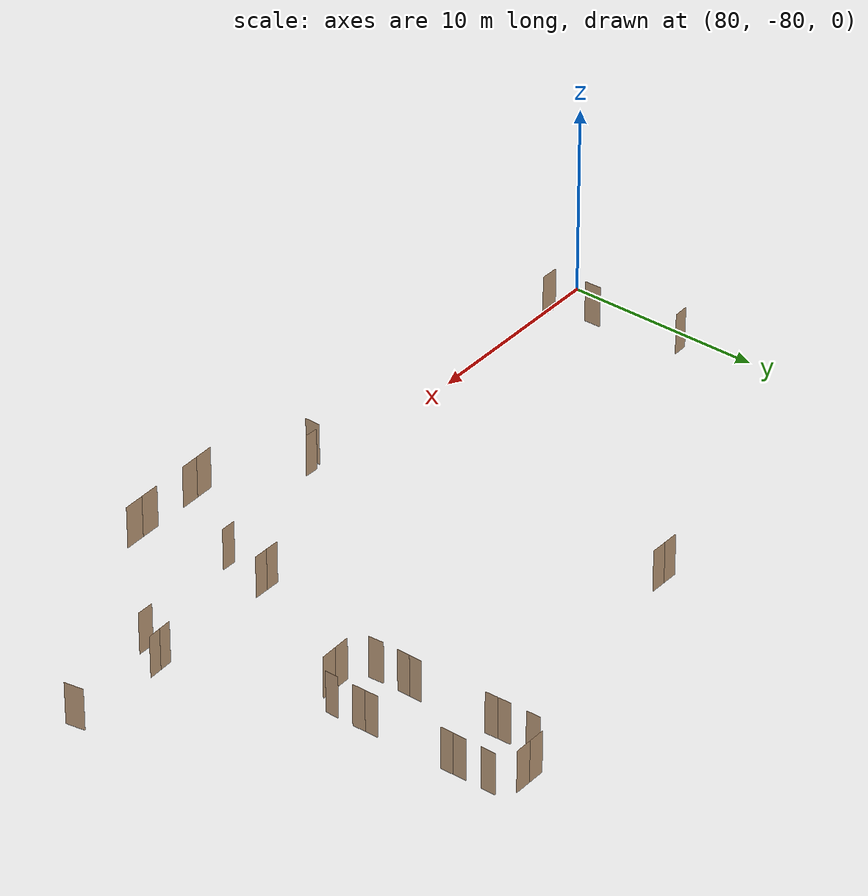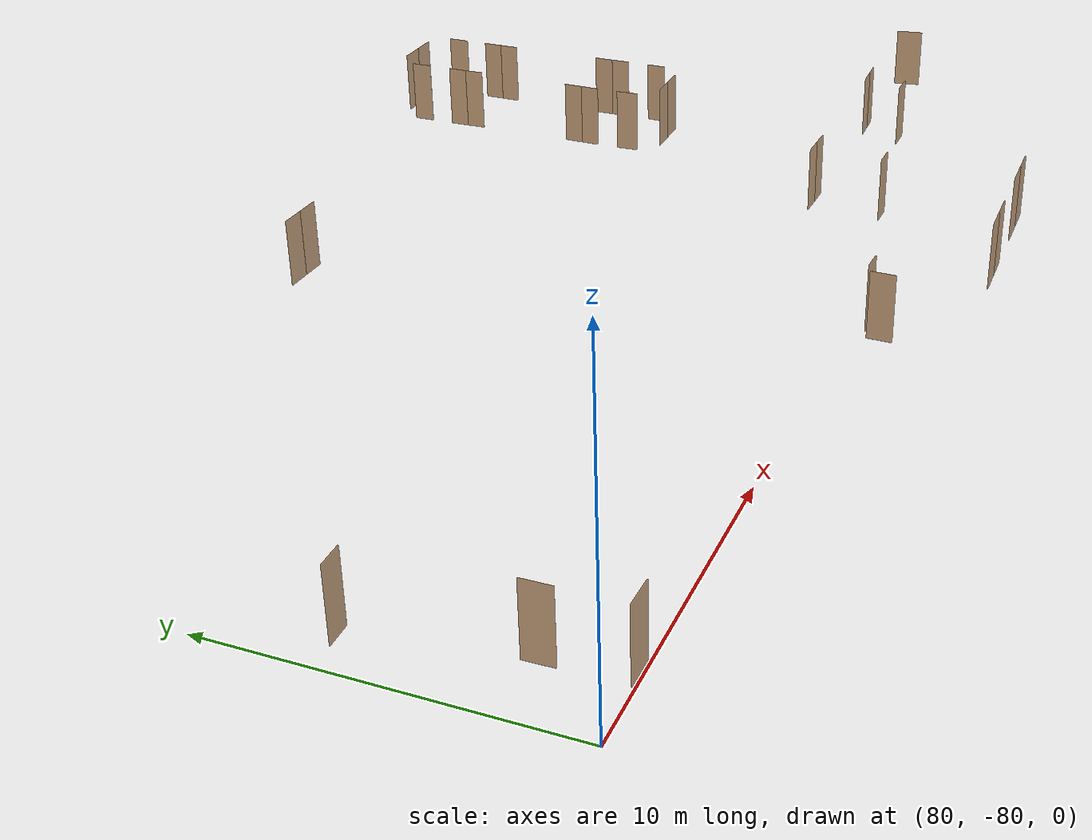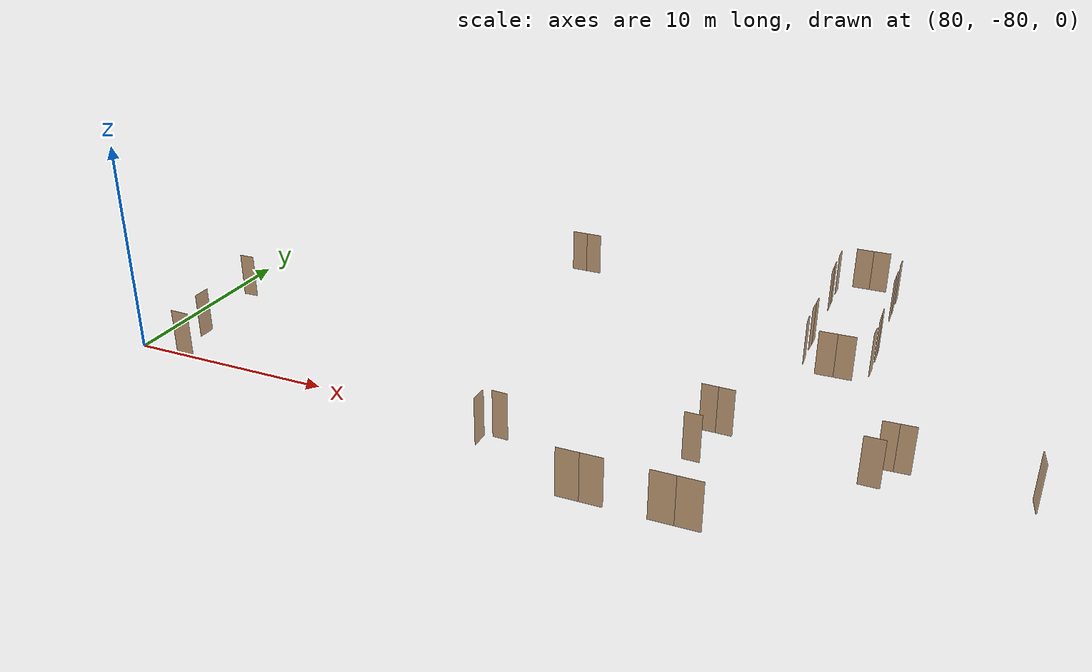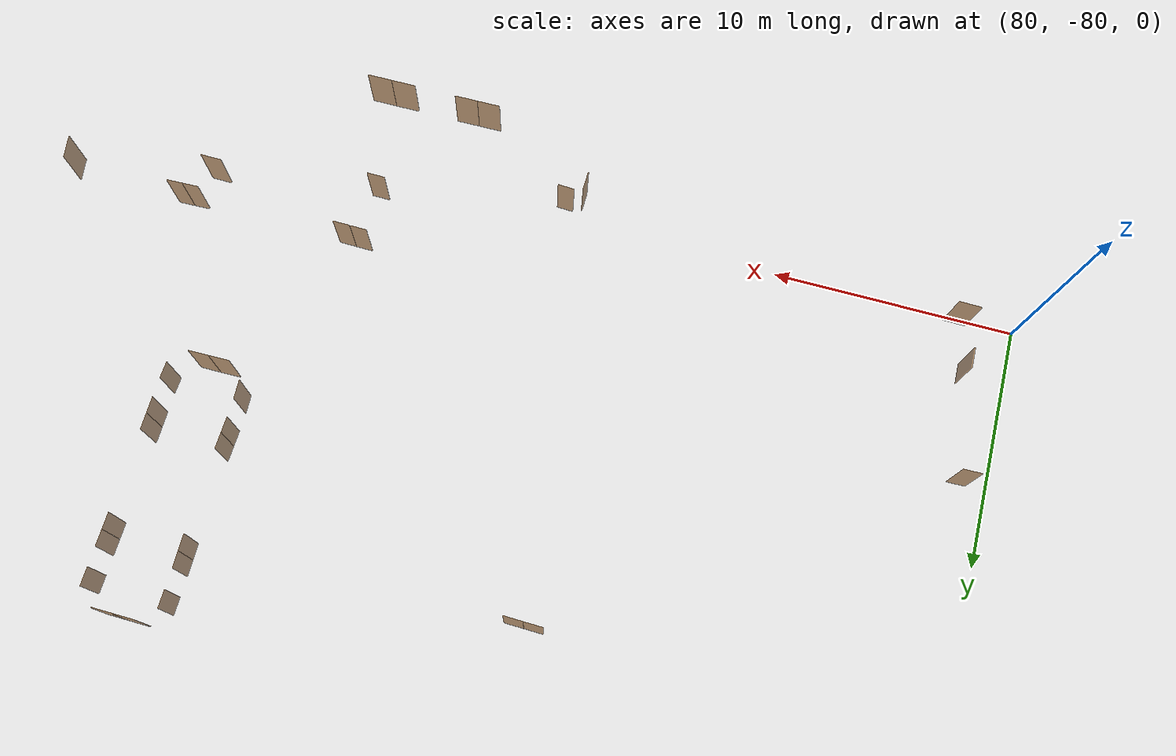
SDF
<sdf version="1.7">
 <world name="sim_world">
  <model name="door_16">
   <pose>82.3641444509181 -79.90362082905617 0.0 0 0 3.125477321741689</pose>
   <link name="right">
    <pose>0 0 1.11 0 0 0</pose>
    <visual name="right_visual">
     <geometry><box><size>0.9320701824224734 0.03 2.2</size></box></geometry>
     <material>
      <ambient>0.5 0.25 0 0.6</ambient>
      <diffuse>0.5 0.25 0 0.6</diffuse>
      <pbr><metal><metalness>0.0</metalness></metal></pbr>
     </material>
    </visual>
    <collision name="right_collision">
     <geometry><box><size>0.9320701824224734 0.03 2.2</size></box></geometry>
     <surface><contact><collide_bitmask>0x02</collide_bitmask></contact></surface>
    </collision>
    <inertial>
     <mass>50.0</mass>
     <inertia><ixx>20.17041666666667</ixx><iyy>23.786478437337767</iyy><izz>3.6235617706710954</izz></inertia>
    </inertial>
   </link>
   <joint name="right_joint" type="revolute">
    <parent>world</parent>
    <child>right</child>
    <axis><xyz>0 0 1</xyz><limit><lower>0</lower><upper>1.57</upper></limit></axis>
    <pose>0.4710350912112367 0 0 0 0 0</pose>
   </joint>
   <plugin name="register_component" filename="libregister_component.so">
    <component name="Door">
     <v_max_door>0.5</v_max_door>
     <a_max_door>0.3</a_max_door>
     <a_nom_door>0.15</a_nom_door>
     <dx_min_door>0.01</dx_min_door>
     <f_max_door>500.0</f_max_door>
     <ros_interface>true</ros_interface>
     <door name="door_16" type="SwingDoor" left_joint_name="empty_joint" right_joint_name="right_joint"/>
    </component>
   </plugin>
  </model>
  <model name="door_17">
   <pose>81.88743643286054 -77.72429220719917 0.0 0 0 1.5839888097583863</pose>
   <link name="right">
    <pose>0 0 1.11 0 0 0</pose>
    <visual name="right_visual">
     <geometry><box><size>0.8593218251926276 0.03 2.2</size></box></geometry>
     <material>
      <ambient>0.5 0.25 0 0.6</ambient>
      <diffuse>0.5 0.25 0 0.6</diffuse>
      <pbr><metal><metalness>0.0</metalness></metal></pbr>
     </material>
    </visual>
    <collision name="right_collision">
     <geometry><box><size>0.8593218251926276 0.03 2.2</size></box></geometry>
     <surface><contact><collide_bitmask>0x02</collide_bitmask></contact></surface>
    </collision>
    <inertial>
     <mass>50.0</mass>
     <inertia><ixx>20.17041666666667</ixx><iyy>23.24347499688496</iyy><izz>3.080558330218287</izz></inertia>
    </inertial>
   </link>
   <joint name="right_joint" type="revolute">
    <parent>world</parent>
    <child>right</child>
    <axis><xyz>0 0 1</xyz><limit><lower>0</lower><upper>1.57</upper></limit></axis>
    <pose>0.4346609125963138 0 0 0 0 0</pose>
   </joint>
   <plugin name="register_component" filename="libregister_component.so">
    <component name="Door">
     <v_max_door>0.5</v_max_door>
     <a_max_door>0.3</a_max_door>
     <a_nom_door>0.15</a_nom_door>
     <dx_min_door>0.01</dx_min_door>
     <f_max_door>500.0</f_max_door>
     <ros_interface>true</ros_interface>
     <door name="door_17" type="SwingDoor" left_joint_name="empty_joint" right_joint_name="right_joint"/>
    </component>
   </plugin>
  </model>
  <model name="door_19">
   <pose>81.15341298167101 -73.16172292535998 0.0 0 0 -3.1118926288095348</pose>
   <link name="right">
    <pose>0 0 1.11 0 0 0</pose>
    <visual name="right_visual">
     <geometry><box><size>0.7583476424192406 0.03 2.2</size></box></geometry>
     <material>
      <ambient>0.5 0.25 0 0.6</ambient>
      <diffuse>0.5 0.25 0 0.6</diffuse>
      <pbr><metal><metalness>0.0</metalness></metal></pbr>
     </material>
    </visual>
    <collision name="right_collision">
     <geometry><box><size>0.7583476424192406 0.03 2.2</size></box></geometry>
     <surface><contact><collide_bitmask>0x02</collide_bitmask></contact></surface>
    </collision>
    <inertial>
     <mass>50.0</mass>
     <inertia><ixx>20.17041666666667</ixx><iyy>22.562879778178424</iyy><izz>2.399963111511752</izz></inertia>
    </inertial>
   </link>
   <joint name="right_joint" type="revolute">
    <parent>world</parent>
    <child>right</child>
    <axis><xyz>0 0 -1</xyz><limit><lower>0</lower><upper>1.57</upper></limit></axis>
    <pose>0.3841738212096203 0 0 0 0 0</pose>
   </joint>
   <plugin name="register_component" filename="libregister_component.so">
    <component name="Door">
     <v_max_door>0.5</v_max_door>
     <a_max_door>0.3</a_max_door>
     <a_nom_door>0.15</a_nom_door>
     <dx_min_door>0.01</dx_min_door>
     <f_max_door>500.0</f_max_door>
     <ros_interface>true</ros_interface>
     <door name="door_19" type="SwingDoor" left_joint_name="empty_joint" right_joint_name="right_joint"/>
    </component>
   </plugin>
  </model>
  <model name="door_38">
   <pose>96.27404455471877 -63.08902218804129 0.0 0 0 3.1270987352519044</pose>
   <link name="right">
    <pose>0.3982167613476379 0 1.11 0 0 0</pose>
    <visual name="right_visual">
     <geometry><box><size>0.7864335226952758 0.03 2.2</size></box></geometry>
     <material>
      <ambient>0.5 0.25 0 0.6</ambient>
      <diffuse>0.5 0.25 0 0.6</diffuse>
      <pbr><metal><metalness>0.0</metalness></metal></pbr>
     </material>
    </visual>
    <collision name="right_collision">
     <geometry><box><size>0.7864335226952758 0.03 2.2</size></box></geometry>
     <surface><contact><collide_bitmask>0x02</collide_bitmask></contact></surface>
    </collision>
    <inertial>
     <mass>50.0</mass>
     <inertia><ixx>20.17041666666667</ixx><iyy>22.74365702341209</iyy><izz>2.5807403567454203</izz></inertia>
    </inertial>
   </link>
   <joint name="right_joint" type="revolute">
    <parent>world</parent>
    <child>right</child>
    <axis><xyz>0 0 -1</xyz><limit><lower>0</lower><upper>1.57</upper></limit></axis>
    <pose>0.3982167613476379 0 0 0 0 0</pose>
   </joint>
   <link name="left">
    <pose>-0.3982167613476379 0 1.11 0 0 0</pose>
    <visual name="left_visual">
     <geometry><box><size>0.7864335226952758 0.03 2.2</size></box></geometry>
     <material>
      <ambient>0.5 0.25 0 0.6</ambient>
      <diffuse>0.5 0.25 0 0.6</diffuse>
      <pbr><metal><metalness>0.0</metalness></metal></pbr>
     </material>
    </visual>
    <collision name="left_collision">
     <geometry><box><size>0.7864335226952758 0.03 2.2</size></box></geometry>
     <surface><contact><collide_bitmask>0x02</collide_bitmask></contact></surface>
    </collision>
    <inertial>
     <mass>50.0</mass>
     <inertia><ixx>20.17041666666667</ixx><iyy>22.74365702341209</iyy><izz>2.5807403567454203</izz></inertia>
    </inertial>
   </link>
   <joint name="left_joint" type="revolute">
    <parent>world</parent>
    <child>left</child>
    <axis><xyz>0 0 -1</xyz><limit><lower>-1.57</lower><upper>0</upper></limit></axis>
    <pose>-0.3982167613476379 0 0 0 0 0</pose>
   </joint>
   <plugin name="register_component" filename="libregister_component.so">
    <component name="Door">
     <v_max_door>0.5</v_max_door>
     <a_max_door>0.3</a_max_door>
     <a_nom_door>0.15</a_nom_door>
     <dx_min_door>0.01</dx_min_door>
     <f_max_door>500.0</f_max_door>
     <ros_interface>true</ros_interface>
     <door name="door_38" type="DoubleSwingDoor" left_joint_name="left_joint" right_joint_name="right_joint"/>
    </component>
   </plugin>
  </model>
  <model name="door_39">
   <pose>107.06542294006414 -78.98809769811687 0.0 0 0 3.127732387679323</pose>
   <link name="right">
    <pose>0 0 1.11 0 0 0</pose>
    <visual name="right_visual">
     <geometry><box><size>0.7547885169420366 0.03 2.2</size></box></geometry>
     <material>
      <ambient>0.5 0.25 0 0.6</ambient>
      <diffuse>0.5 0.25 0 0.6</diffuse>
      <pbr><metal><metalness>0.0</metalness></metal></pbr>
     </material>
    </visual>
    <collision name="right_collision">
     <geometry><box><size>0.7547885169420366 0.03 2.2</size></box></geometry>
     <surface><contact><collide_bitmask>0x02</collide_bitmask></contact></surface>
    </collision>
    <inertial>
     <mass>50.0</mass>
     <inertia><ixx>20.17041666666667</ixx><iyy>22.5404404387815</iyy><izz>2.37752377211483</izz></inertia>
    </inertial>
   </link>
   <joint name="right_joint" type="revolute">
    <parent>world</parent>
    <child>right</child>
    <axis><xyz>0 0 1</xyz><limit><lower>0</lower><upper>1.57</upper></limit></axis>
    <pose>0.3823942584710183 0 0 0 0 0</pose>
   </joint>
   <plugin name="register_component" filename="libregister_component.so">
    <component name="Door">
     <v_max_door>0.5</v_max_door>
     <a_max_door>0.3</a_max_door>
     <a_nom_door>0.15</a_nom_door>
     <dx_min_door>0.01</dx_min_door>
     <f_max_door>500.0</f_max_door>
     <ros_interface>true</ros_interface>
     <door name="door_39" type="SwingDoor" left_joint_name="empty_joint" right_joint_name="right_joint"/>
    </component>
   </plugin>
  </model>
  <model name="door_40">
   <pose>103.9711401048485 -83.41017428056057 0.0 0 0 -3.12980783928951</pose>
   <link name="right">
    <pose>0.49038860687994895 0 1.11 0 0 0</pose>
    <visual name="right_visual">
     <geometry><box><size>0.9707772137598979 0.03 2.2</size></box></geometry>
     <material>
      <ambient>0.5 0.25 0 0.6</ambient>
      <diffuse>0.5 0.25 0 0.6</diffuse>
      <pbr><metal><metalness>0.0</metalness></metal></pbr>
     </material>
    </visual>
    <collision name="right_collision">
     <geometry><box><size>0.9707772137598979 0.03 2.2</size></box></geometry>
     <surface><contact><collide_bitmask>0x02</collide_bitmask></contact></surface>
    </collision>
    <inertial>
     <mass>50.0</mass>
     <inertia><ixx>20.17041666666667</ixx><iyy>24.093368328147633</iyy><izz>3.930451661480961</izz></inertia>
    </inertial>
   </link>
   <joint name="right_joint" type="revolute">
    <parent>world</parent>
    <child>right</child>
    <axis><xyz>0 0 -1</xyz><limit><lower>0</lower><upper>1.57</upper></limit></axis>
    <pose>0.49038860687994895 0 0 0 0 0</pose>
   </joint>
   <link name="left">
    <pose>-0.49038860687994895 0 1.11 0 0 0</pose>
    <visual name="left_visual">
     <geometry><box><size>0.9707772137598979 0.03 2.2</size></box></geometry>
     <material>
      <ambient>0.5 0.25 0 0.6</ambient>
      <diffuse>0.5 0.25 0 0.6</diffuse>
      <pbr><metal><metalness>0.0</metalness></metal></pbr>
     </material>
    </visual>
    <collision name="left_collision">
     <geometry><box><size>0.9707772137598979 0.03 2.2</size></box></geometry>
     <surface><contact><collide_bitmask>0x02</collide_bitmask></contact></surface>
    </collision>
    <inertial>
     <mass>50.0</mass>
     <inertia><ixx>20.17041666666667</ixx><iyy>24.093368328147633</iyy><izz>3.930451661480961</izz></inertia>
    </inertial>
   </link>
   <joint name="left_joint" type="revolute">
    <parent>world</parent>
    <child>left</child>
    <axis><xyz>0 0 -1</xyz><limit><lower>-1.57</lower><upper>0</upper></limit></axis>
    <pose>-0.49038860687994895 0 0 0 0 0</pose>
   </joint>
   <plugin name="register_component" filename="libregister_component.so">
    <component name="Door">
     <v_max_door>0.5</v_max_door>
     <a_max_door>0.3</a_max_door>
     <a_nom_door>0.15</a_nom_door>
     <dx_min_door>0.01</dx_min_door>
     <f_max_door>500.0</f_max_door>
     <ros_interface>true</ros_interface>
     <door name="door_40" type="DoubleSwingDoor" left_joint_name="left_joint" right_joint_name="right_joint"/>
    </component>
   </plugin>
  </model>
  <model name="door_41">
   <pose>107.75975690424413 -83.3907562252413 0.0 0 0 -3.1340848576950155</pose>
   <link name="right">
    <pose>0.5234638417380552 0 1.11 0 0 0</pose>
    <visual name="right_visual">
     <geometry><box><size>1.0369276834761103 0.03 2.2</size></box></geometry>
     <material>
      <ambient>0.5 0.25 0 0.6</ambient>
      <diffuse>0.5 0.25 0 0.6</diffuse>
      <pbr><metal><metalness>0.0</metalness></metal></pbr>
     </material>
    </visual>
    <collision name="right_collision">
     <geometry><box><size>1.0369276834761103 0.03 2.2</size></box></geometry>
     <surface><contact><collide_bitmask>0x02</collide_bitmask></contact></surface>
    </collision>
    <inertial>
     <mass>50.0</mass>
     <inertia><ixx>20.17041666666667</ixx><iyy>24.646745919829726</iyy><izz>4.4838292531630515</izz></inertia>
    </inertial>
   </link>
   <joint name="right_joint" type="revolute">
    <parent>world</parent>
    <child>right</child>
    <axis><xyz>0 0 -1</xyz><limit><lower>0</lower><upper>1.57</upper></limit></axis>
    <pose>0.5234638417380552 0 0 0 0 0</pose>
   </joint>
   <link name="left">
    <pose>-0.5234638417380552 0 1.11 0 0 0</pose>
    <visual name="left_visual">
     <geometry><box><size>1.0369276834761103 0.03 2.2</size></box></geometry>
     <material>
      <ambient>0.5 0.25 0 0.6</ambient>
      <diffuse>0.5 0.25 0 0.6</diffuse>
      <pbr><metal><metalness>0.0</metalness></metal></pbr>
     </material>
    </visual>
    <collision name="left_collision">
     <geometry><box><size>1.0369276834761103 0.03 2.2</size></box></geometry>
     <surface><contact><collide_bitmask>0x02</collide_bitmask></contact></surface>
    </collision>
    <inertial>
     <mass>50.0</mass>
     <inertia><ixx>20.17041666666667</ixx><iyy>24.646745919829726</iyy><izz>4.4838292531630515</izz></inertia>
    </inertial>
   </link>
   <joint name="left_joint" type="revolute">
    <parent>world</parent>
    <child>left</child>
    <axis><xyz>0 0 -1</xyz><limit><lower>-1.57</lower><upper>0</upper></limit></axis>
    <pose>-0.5234638417380552 0 0 0 0 0</pose>
   </joint>
   <plugin name="register_component" filename="libregister_component.so">
    <component name="Door">
     <v_max_door>0.5</v_max_door>
     <a_max_door>0.3</a_max_door>
     <a_nom_door>0.15</a_nom_door>
     <dx_min_door>0.01</dx_min_door>
     <f_max_door>500.0</f_max_door>
     <ros_interface>true</ros_interface>
     <door name="door_41" type="DoubleSwingDoor" left_joint_name="left_joint" right_joint_name="right_joint"/>
    </component>
   </plugin>
  </model>
  <model name="door_42">
   <pose>98.60858287549235 -81.07030610034701 0.0 0 0 1.5503641261719026</pose>
   <link name="right">
    <pose>0 0 1.11 0 0 0</pose>
    <visual name="right_visual">
     <geometry><box><size>0.7858123181095408 0.03 2.2</size></box></geometry>
     <material>
      <ambient>0.5 0.25 0 0.6</ambient>
      <diffuse>0.5 0.25 0 0.6</diffuse>
      <pbr><metal><metalness>0.0</metalness></metal></pbr>
     </material>
    </visual>
    <collision name="right_collision">
     <geometry><box><size>0.7858123181095408 0.03 2.2</size></box></geometry>
     <surface><contact><collide_bitmask>0x02</collide_bitmask></contact></surface>
    </collision>
    <inertial>
     <mass>50.0</mass>
     <inertia><ixx>20.17041666666667</ixx><iyy>22.73958749705288</iyy><izz>2.576670830386209</izz></inertia>
    </inertial>
   </link>
   <joint name="right_joint" type="revolute">
    <parent>world</parent>
    <child>right</child>
    <axis><xyz>0 0 -1</xyz><limit><lower>0</lower><upper>1.57</upper></limit></axis>
    <pose>0.3979061590547704 0 0 0 0 0</pose>
   </joint>
   <plugin name="register_component" filename="libregister_component.so">
    <component name="Door">
     <v_max_door>0.5</v_max_door>
     <a_max_door>0.3</a_max_door>
     <a_nom_door>0.15</a_nom_door>
     <dx_min_door>0.01</dx_min_door>
     <f_max_door>500.0</f_max_door>
     <ros_interface>true</ros_interface>
     <door name="door_42" type="SwingDoor" left_joint_name="empty_joint" right_joint_name="right_joint"/>
    </component>
   </plugin>
  </model>
  <model name="door_43">
   <pose>99.31956516466465 -80.57054194875693 0.0 0 0 3.0962807603301337</pose>
   <link name="right">
    <pose>0 0 1.11 0 0 0</pose>
    <visual name="right_visual">
     <geometry><box><size>0.6979810594334084 0.03 2.2</size></box></geometry>
     <material>
      <ambient>0.5 0.25 0 0.6</ambient>
      <diffuse>0.5 0.25 0 0.6</diffuse>
      <pbr><metal><metalness>0.0</metalness></metal></pbr>
     </material>
    </visual>
    <collision name="right_collision">
     <geometry><box><size>0.6979810594334084 0.03 2.2</size></box></geometry>
     <surface><contact><collide_bitmask>0x02</collide_bitmask></contact></surface>
    </collision>
    <inertial>
     <mass>50.0</mass>
     <inertia><ixx>20.17041666666667</ixx><iyy>22.196573163865768</iyy><izz>2.0336564971990967</izz></inertia>
    </inertial>
   </link>
   <joint name="right_joint" type="revolute">
    <parent>world</parent>
    <child>right</child>
    <axis><xyz>0 0 1</xyz><limit><lower>0</lower><upper>1.57</upper></limit></axis>
    <pose>0.3539905297167042 0 0 0 0 0</pose>
   </joint>
   <plugin name="register_component" filename="libregister_component.so">
    <component name="Door">
     <v_max_door>0.5</v_max_door>
     <a_max_door>0.3</a_max_door>
     <a_nom_door>0.15</a_nom_door>
     <dx_min_door>0.01</dx_min_door>
     <f_max_door>500.0</f_max_door>
     <ros_interface>true</ros_interface>
     <door name="door_43" type="SwingDoor" left_joint_name="empty_joint" right_joint_name="right_joint"/>
    </component>
   </plugin>
  </model>
  <model name="door_44">
   <pose>113.92414357749678 -77.93857950541397 0.0 0 0 3.1343926968784634</pose>
   <link name="right">
    <pose>0 0 1.11 0 0 0</pose>
    <visual name="right_visual">
     <geometry><box><size>0.8758276333837675 0.03 2.2</size></box></geometry>
     <material>
      <ambient>0.5 0.25 0 0.6</ambient>
      <diffuse>0.5 0.25 0 0.6</diffuse>
      <pbr><metal><metalness>0.0</metalness></metal></pbr>
     </material>
    </visual>
    <collision name="right_collision">
     <geometry><box><size>0.8758276333837675 0.03 2.2</size></box></geometry>
     <surface><contact><collide_bitmask>0x02</collide_bitmask></contact></surface>
    </collision>
    <inertial>
     <mass>50.0</mass>
     <inertia><ixx>20.17041666666667</ixx><iyy>23.362808514160882</iyy><izz>3.1998918474942126</izz></inertia>
    </inertial>
   </link>
   <joint name="right_joint" type="revolute">
    <parent>world</parent>
    <child>right</child>
    <axis><xyz>0 0 1</xyz><limit><lower>0</lower><upper>1.57</upper></limit></axis>
    <pose>0.44291381669188373 0 0 0 0 0</pose>
   </joint>
   <plugin name="register_component" filename="libregister_component.so">
    <component name="Door">
     <v_max_door>0.5</v_max_door>
     <a_max_door>0.3</a_max_door>
     <a_nom_door>0.15</a_nom_door>
     <dx_min_door>0.01</dx_min_door>
     <f_max_door>500.0</f_max_door>
     <ros_interface>true</ros_interface>
     <door name="door_44" type="SwingDoor" left_joint_name="empty_joint" right_joint_name="right_joint"/>
    </component>
   </plugin>
  </model>
  <model name="door_45">
   <pose>119.9033625497559 -76.80719706715539 0.0 0 0 1.716756556583391</pose>
   <link name="right">
    <pose>0 0 1.11 0 0 0</pose>
    <visual name="right_visual">
     <geometry><box><size>0.961319955664201 0.03 2.2</size></box></geometry>
     <material>
      <ambient>0.5 0.25 0 0.6</ambient>
      <diffuse>0.5 0.25 0 0.6</diffuse>
      <pbr><metal><metalness>0.0</metalness></metal></pbr>
     </material>
    </visual>
    <collision name="right_collision">
     <geometry><box><size>0.961319955664201 0.03 2.2</size></box></geometry>
     <surface><contact><collide_bitmask>0x02</collide_bitmask></contact></surface>
    </collision>
    <inertial>
     <mass>50.0</mass>
     <inertia><ixx>20.17041666666667</ixx><iyy>24.017233571492593</iyy><izz>3.854316904825923</izz></inertia>
    </inertial>
   </link>
   <joint name="right_joint" type="revolute">
    <parent>world</parent>
    <child>right</child>
    <axis><xyz>0 0 -1</xyz><limit><lower>0</lower><upper>1.57</upper></limit></axis>
    <pose>0.4856599778321005 0 0 0 0 0</pose>
   </joint>
   <plugin name="register_component" filename="libregister_component.so">
    <component name="Door">
     <v_max_door>0.5</v_max_door>
     <a_max_door>0.3</a_max_door>
     <a_nom_door>0.15</a_nom_door>
     <dx_min_door>0.01</dx_min_door>
     <f_max_door>500.0</f_max_door>
     <ros_interface>true</ros_interface>
     <door name="door_45" type="SwingDoor" left_joint_name="empty_joint" right_joint_name="right_joint"/>
    </component>
   </plugin>
  </model>
  <model name="door_46">
   <pose>114.65890063293509 -76.50570069242961 0.0 0 0 -3.1060419598570164</pose>
   <link name="right">
    <pose>0.34203078072737075 0 1.11 0 0 0</pose>
    <visual name="right_visual">
     <geometry><box><size>0.6740615614547415 0.03 2.2</size></box></geometry>
     <material>
      <ambient>0.5 0.25 0 0.6</ambient>
      <diffuse>0.5 0.25 0 0.6</diffuse>
      <pbr><metal><metalness>0.0</metalness></metal></pbr>
     </material>
    </visual>
    <collision name="right_collision">
     <geometry><box><size>0.6740615614547415 0.03 2.2</size></box></geometry>
     <surface><contact><collide_bitmask>0x02</collide_bitmask></contact></surface>
    </collision>
    <inertial>
     <mass>50.0</mass>
     <inertia><ixx>20.17041666666667</ixx><iyy>22.05982911929502</iyy><izz>1.8969124526283512</izz></inertia>
    </inertial>
   </link>
   <joint name="right_joint" type="revolute">
    <parent>world</parent>
    <child>right</child>
    <axis><xyz>0 0 1</xyz><limit><lower>0</lower><upper>1.57</upper></limit></axis>
    <pose>0.34203078072737075 0 0 0 0 0</pose>
   </joint>
   <link name="left">
    <pose>-0.34203078072737075 0 1.11 0 0 0</pose>
    <visual name="left_visual">
     <geometry><box><size>0.6740615614547415 0.03 2.2</size></box></geometry>
     <material>
      <ambient>0.5 0.25 0 0.6</ambient>
      <diffuse>0.5 0.25 0 0.6</diffuse>
      <pbr><metal><metalness>0.0</metalness></metal></pbr>
     </material>
    </visual>
    <collision name="left_collision">
     <geometry><box><size>0.6740615614547415 0.03 2.2</size></box></geometry>
     <surface><contact><collide_bitmask>0x02</collide_bitmask></contact></surface>
    </collision>
    <inertial>
     <mass>50.0</mass>
     <inertia><ixx>20.17041666666667</ixx><iyy>22.05982911929502</iyy><izz>1.8969124526283512</izz></inertia>
    </inertial>
   </link>
   <joint name="left_joint" type="revolute">
    <parent>world</parent>
    <child>left</child>
    <axis><xyz>0 0 1</xyz><limit><lower>-1.57</lower><upper>0</upper></limit></axis>
    <pose>-0.34203078072737075 0 0 0 0 0</pose>
   </joint>
   <plugin name="register_component" filename="libregister_component.so">
    <component name="Door">
     <v_max_door>0.5</v_max_door>
     <a_max_door>0.3</a_max_door>
     <a_nom_door>0.15</a_nom_door>
     <dx_min_door>0.01</dx_min_door>
     <f_max_door>500.0</f_max_door>
     <ros_interface>true</ros_interface>
     <door name="door_46" type="DoubleSwingDoor" left_joint_name="left_joint" right_joint_name="right_joint"/>
    </component>
   </plugin>
  </model>
  <model name="door_47">
   <pose>107.40214729024574 -76.54094363940075 0.0 0 0 3.1283432019202078</pose>
   <link name="right">
    <pose>0.3627317671407243 0 1.11 0 0 0</pose>
    <visual name="right_visual">
     <geometry><box><size>0.7154635342814486 0.03 2.2</size></box></geometry>
     <material>
      <ambient>0.5 0.25 0 0.6</ambient>
      <diffuse>0.5 0.25 0 0.6</diffuse>
      <pbr><metal><metalness>0.0</metalness></metal></pbr>
     </material>
    </visual>
    <collision name="right_collision">
     <geometry><box><size>0.7154635342814486 0.03 2.2</size></box></geometry>
     <surface><contact><collide_bitmask>0x02</collide_bitmask></contact></surface>
    </collision>
    <inertial>
     <mass>50.0</mass>
     <inertia><ixx>20.17041666666667</ixx><iyy>22.299533620360428</iyy><izz>2.136616953693757</izz></inertia>
    </inertial>
   </link>
   <joint name="right_joint" type="revolute">
    <parent>world</parent>
    <child>right</child>
    <axis><xyz>0 0 1</xyz><limit><lower>0</lower><upper>1.57</upper></limit></axis>
    <pose>0.3627317671407243 0 0 0 0 0</pose>
   </joint>
   <link name="left">
    <pose>-0.3627317671407243 0 1.11 0 0 0</pose>
    <visual name="left_visual">
     <geometry><box><size>0.7154635342814486 0.03 2.2</size></box></geometry>
     <material>
      <ambient>0.5 0.25 0 0.6</ambient>
      <diffuse>0.5 0.25 0 0.6</diffuse>
      <pbr><metal><metalness>0.0</metalness></metal></pbr>
     </material>
    </visual>
    <collision name="left_collision">
     <geometry><box><size>0.7154635342814486 0.03 2.2</size></box></geometry>
     <surface><contact><collide_bitmask>0x02</collide_bitmask></contact></surface>
    </collision>
    <inertial>
     <mass>50.0</mass>
     <inertia><ixx>20.17041666666667</ixx><iyy>22.299533620360428</iyy><izz>2.136616953693757</izz></inertia>
    </inertial>
   </link>
   <joint name="left_joint" type="revolute">
    <parent>world</parent>
    <child>left</child>
    <axis><xyz>0 0 1</xyz><limit><lower>-1.57</lower><upper>0</upper></limit></axis>
    <pose>-0.3627317671407243 0 0 0 0 0</pose>
   </joint>
   <plugin name="register_component" filename="libregister_component.so">
    <component name="Door">
     <v_max_door>0.5</v_max_door>
     <a_max_door>0.3</a_max_door>
     <a_nom_door>0.15</a_nom_door>
     <dx_min_door>0.01</dx_min_door>
     <f_max_door>500.0</f_max_door>
     <ros_interface>true</ros_interface>
     <door name="door_47" type="DoubleSwingDoor" left_joint_name="left_joint" right_joint_name="right_joint"/>
    </component>
   </plugin>
  </model>
  <model name="door_48">
   <pose>111.04104893683285 -69.7426330661263 0.0 0 0 -3.1234603377160393</pose>
   <link name="right">
    <pose>0.4240106138316132 0 1.11 0 0 0</pose>
    <visual name="right_visual">
     <geometry><box><size>0.8380212276632264 0.03 2.2</size></box></geometry>
     <material>
      <ambient>0.5 0.25 0 0.6</ambient>
      <diffuse>0.5 0.25 0 0.6</diffuse>
      <pbr><metal><metalness>0.0</metalness></metal></pbr>
     </material>
    </visual>
    <collision name="right_collision">
     <geometry><box><size>0.8380212276632264 0.03 2.2</size></box></geometry>
     <surface><contact><collide_bitmask>0x02</collide_bitmask></contact></surface>
    </collision>
    <inertial>
     <mass>50.0</mass>
     <inertia><ixx>20.17041666666667</ixx><iyy>23.092831575059094</iyy><izz>2.929914908392422</izz></inertia>
    </inertial>
   </link>
   <joint name="right_joint" type="revolute">
    <parent>world</parent>
    <child>right</child>
    <axis><xyz>0 0 1</xyz><limit><lower>0</lower><upper>1.57</upper></limit></axis>
    <pose>0.4240106138316132 0 0 0 0 0</pose>
   </joint>
   <link name="left">
    <pose>-0.4240106138316132 0 1.11 0 0 0</pose>
    <visual name="left_visual">
     <geometry><box><size>0.8380212276632264 0.03 2.2</size></box></geometry>
     <material>
      <ambient>0.5 0.25 0 0.6</ambient>
      <diffuse>0.5 0.25 0 0.6</diffuse>
      <pbr><metal><metalness>0.0</metalness></metal></pbr>
     </material>
    </visual>
    <collision name="left_collision">
     <geometry><box><size>0.8380212276632264 0.03 2.2</size></box></geometry>
     <surface><contact><collide_bitmask>0x02</collide_bitmask></contact></surface>
    </collision>
    <inertial>
     <mass>50.0</mass>
     <inertia><ixx>20.17041666666667</ixx><iyy>23.092831575059094</iyy><izz>2.929914908392422</izz></inertia>
    </inertial>
   </link>
   <joint name="left_joint" type="revolute">
    <parent>world</parent>
    <child>left</child>
    <axis><xyz>0 0 1</xyz><limit><lower>-1.57</lower><upper>0</upper></limit></axis>
    <pose>-0.4240106138316132 0 0 0 0 0</pose>
   </joint>
   <plugin name="register_component" filename="libregister_component.so">
    <component name="Door">
     <v_max_door>0.5</v_max_door>
     <a_max_door>0.3</a_max_door>
     <a_nom_door>0.15</a_nom_door>
     <dx_min_door>0.01</dx_min_door>
     <f_max_door>500.0</f_max_door>
     <ros_interface>true</ros_interface>
     <door name="door_48" type="DoubleSwingDoor" left_joint_name="left_joint" right_joint_name="right_joint"/>
    </component>
   </plugin>
  </model>
  <model name="door_49">
   <pose>112.55513324870054 -68.71594643422671 0.0 0 0 1.5301008629182398</pose>
   <link name="right">
    <pose>0 0 1.11 0 0 0</pose>
    <visual name="right_visual">
     <geometry><box><size>0.6862428806285946 0.03 2.2</size></box></geometry>
     <material>
      <ambient>0.5 0.25 0 0.6</ambient>
      <diffuse>0.5 0.25 0 0.6</diffuse>
      <pbr><metal><metalness>0.0</metalness></metal></pbr>
     </material>
    </visual>
    <collision name="right_collision">
     <geometry><box><size>0.6862428806285946 0.03 2.2</size></box></geometry>
     <surface><contact><collide_bitmask>0x02</collide_bitmask></contact></surface>
    </collision>
    <inertial>
     <mass>50.0</mass>
     <inertia><ixx>20.17041666666667</ixx><iyy>22.128872046722638</iyy><izz>1.965955380055965</izz></inertia>
    </inertial>
   </link>
   <joint name="right_joint" type="revolute">
    <parent>world</parent>
    <child>right</child>
    <axis><xyz>0 0 -1</xyz><limit><lower>0</lower><upper>1.57</upper></limit></axis>
    <pose>0.3481214403142973 0 0 0 0 0</pose>
   </joint>
   <plugin name="register_component" filename="libregister_component.so">
    <component name="Door">
     <v_max_door>0.5</v_max_door>
     <a_max_door>0.3</a_max_door>
     <a_nom_door>0.15</a_nom_door>
     <dx_min_door>0.01</dx_min_door>
     <f_max_door>500.0</f_max_door>
     <ros_interface>true</ros_interface>
     <door name="door_49" type="SwingDoor" left_joint_name="empty_joint" right_joint_name="right_joint"/>
    </component>
   </plugin>
  </model>
  <model name="door_50">
   <pose>109.50742679752365 -68.73144195254238 0.0 0 0 1.6282101904210908</pose>
   <link name="right">
    <pose>0 0 1.11 0 0 0</pose>
    <visual name="right_visual">
     <geometry><box><size>0.7669844049387192 0.03 2.2</size></box></geometry>
     <material>
      <ambient>0.5 0.25 0 0.6</ambient>
      <diffuse>0.5 0.25 0 0.6</diffuse>
      <pbr><metal><metalness>0.0</metalness></metal></pbr>
     </material>
    </visual>
    <collision name="right_collision">
     <geometry><box><size>0.7669844049387192 0.03 2.2</size></box></geometry>
     <surface><contact><collide_bitmask>0x02</collide_bitmask></contact></surface>
    </collision>
    <inertial>
     <mass>50.0</mass>
     <inertia><ixx>20.17041666666667</ixx><iyy>22.617771155913346</iyy><izz>2.4548544892466717</izz></inertia>
    </inertial>
   </link>
   <joint name="right_joint" type="revolute">
    <parent>world</parent>
    <child>right</child>
    <axis><xyz>0 0 1</xyz><limit><lower>0</lower><upper>1.57</upper></limit></axis>
    <pose>0.3884922024693596 0 0 0 0 0</pose>
   </joint>
   <plugin name="register_component" filename="libregister_component.so">
    <component name="Door">
     <v_max_door>0.5</v_max_door>
     <a_max_door>0.3</a_max_door>
     <a_nom_door>0.15</a_nom_door>
     <dx_min_door>0.01</dx_min_door>
     <f_max_door>500.0</f_max_door>
     <ros_interface>true</ros_interface>
     <door name="door_50" type="SwingDoor" left_joint_name="empty_joint" right_joint_name="right_joint"/>
    </component>
   </plugin>
  </model>
  <model name="door_51">
   <pose>109.49774022713694 -66.92042757810958 0.0 0 0 1.5516222170345515</pose>
   <link name="right">
    <pose>0.32874507561015026 0 1.11 0 0 0</pose>
    <visual name="right_visual">
     <geometry><box><size>0.6474901512203005 0.03 2.2</size></box></geometry>
     <material>
      <ambient>0.5 0.25 0 0.6</ambient>
      <diffuse>0.5 0.25 0 0.6</diffuse>
      <pbr><metal><metalness>0.0</metalness></metal></pbr>
     </material>
    </visual>
    <collision name="right_collision">
     <geometry><box><size>0.6474901512203005 0.03 2.2</size></box></geometry>
     <surface><contact><collide_bitmask>0x02</collide_bitmask></contact></surface>
    </collision>
    <inertial>
     <mass>50.0</mass>
     <inertia><ixx>20.17041666666667</ixx><iyy>21.913514566363702</iyy><izz>1.750597899697032</izz></inertia>
    </inertial>
   </link>
   <joint name="right_joint" type="revolute">
    <parent>world</parent>
    <child>right</child>
    <axis><xyz>0 0 1</xyz><limit><lower>0</lower><upper>1.57</upper></limit></axis>
    <pose>0.32874507561015026 0 0 0 0 0</pose>
   </joint>
   <link name="left">
    <pose>-0.32874507561015026 0 1.11 0 0 0</pose>
    <visual name="left_visual">
     <geometry><box><size>0.6474901512203005 0.03 2.2</size></box></geometry>
     <material>
      <ambient>0.5 0.25 0 0.6</ambient>
      <diffuse>0.5 0.25 0 0.6</diffuse>
      <pbr><metal><metalness>0.0</metalness></metal></pbr>
     </material>
    </visual>
    <collision name="left_collision">
     <geometry><box><size>0.6474901512203005 0.03 2.2</size></box></geometry>
     <surface><contact><collide_bitmask>0x02</collide_bitmask></contact></surface>
    </collision>
    <inertial>
     <mass>50.0</mass>
     <inertia><ixx>20.17041666666667</ixx><iyy>21.913514566363702</iyy><izz>1.750597899697032</izz></inertia>
    </inertial>
   </link>
   <joint name="left_joint" type="revolute">
    <parent>world</parent>
    <child>left</child>
    <axis><xyz>0 0 1</xyz><limit><lower>-1.57</lower><upper>0</upper></limit></axis>
    <pose>-0.32874507561015026 0 0 0 0 0</pose>
   </joint>
   <plugin name="register_component" filename="libregister_component.so">
    <component name="Door">
     <v_max_door>0.5</v_max_door>
     <a_max_door>0.3</a_max_door>
     <a_nom_door>0.15</a_nom_door>
     <dx_min_door>0.01</dx_min_door>
     <f_max_door>500.0</f_max_door>
     <ros_interface>true</ros_interface>
     <door name="door_51" type="DoubleSwingDoor" left_joint_name="left_joint" right_joint_name="right_joint"/>
    </component>
   </plugin>
  </model>
  <model name="door_52">
   <pose>112.56407124332321 -66.89302970514564 0.0 0 0 1.5784708913386611</pose>
   <link name="right">
    <pose>0.3404173680027173 0 1.11 0 0 0</pose>
    <visual name="right_visual">
     <geometry><box><size>0.6708347360054346 0.03 2.2</size></box></geometry>
     <material>
      <ambient>0.5 0.25 0 0.6</ambient>
      <diffuse>0.5 0.25 0 0.6</diffuse>
      <pbr><metal><metalness>0.0</metalness></metal></pbr>
     </material>
    </visual>
    <collision name="right_collision">
     <geometry><box><size>0.6708347360054346 0.03 2.2</size></box></geometry>
     <surface><contact><collide_bitmask>0x02</collide_bitmask></contact></surface>
    </collision>
    <inertial>
     <mass>50.0</mass>
     <inertia><ixx>20.17041666666667</ixx><iyy>22.04174684596451</iyy><izz>1.8788301792978384</izz></inertia>
    </inertial>
   </link>
   <joint name="right_joint" type="revolute">
    <parent>world</parent>
    <child>right</child>
    <axis><xyz>0 0 -1</xyz><limit><lower>0</lower><upper>1.57</upper></limit></axis>
    <pose>0.3404173680027173 0 0 0 0 0</pose>
   </joint>
   <link name="left">
    <pose>-0.3404173680027173 0 1.11 0 0 0</pose>
    <visual name="left_visual">
     <geometry><box><size>0.6708347360054346 0.03 2.2</size></box></geometry>
     <material>
      <ambient>0.5 0.25 0 0.6</ambient>
      <diffuse>0.5 0.25 0 0.6</diffuse>
      <pbr><metal><metalness>0.0</metalness></metal></pbr>
     </material>
    </visual>
    <collision name="left_collision">
     <geometry><box><size>0.6708347360054346 0.03 2.2</size></box></geometry>
     <surface><contact><collide_bitmask>0x02</collide_bitmask></contact></surface>
    </collision>
    <inertial>
     <mass>50.0</mass>
     <inertia><ixx>20.17041666666667</ixx><iyy>22.04174684596451</iyy><izz>1.8788301792978384</izz></inertia>
    </inertial>
   </link>
   <joint name="left_joint" type="revolute">
    <parent>world</parent>
    <child>left</child>
    <axis><xyz>0 0 -1</xyz><limit><lower>-1.57</lower><upper>0</upper></limit></axis>
    <pose>-0.3404173680027173 0 0 0 0 0</pose>
   </joint>
   <plugin name="register_component" filename="libregister_component.so">
    <component name="Door">
     <v_max_door>0.5</v_max_door>
     <a_max_door>0.3</a_max_door>
     <a_nom_door>0.15</a_nom_door>
     <dx_min_door>0.01</dx_min_door>
     <f_max_door>500.0</f_max_door>
     <ros_interface>true</ros_interface>
     <door name="door_52" type="DoubleSwingDoor" left_joint_name="left_joint" right_joint_name="right_joint"/>
    </component>
   </plugin>
  </model>
  <model name="door_53">
   <pose>109.49389254770975 -62.16379751520002 0.0 0 0 1.5952050200523993</pose>
   <link name="right">
    <pose>0.3370792742269162 0 1.11 0 0 0</pose>
    <visual name="right_visual">
     <geometry><box><size>0.6641585484538324 0.03 2.2</size></box></geometry>
     <material>
      <ambient>0.5 0.25 0 0.6</ambient>
      <diffuse>0.5 0.25 0 0.6</diffuse>
      <pbr><metal><metalness>0.0</metalness></metal></pbr>
     </material>
    </visual>
    <collision name="right_collision">
     <geometry><box><size>0.6641585484538324 0.03 2.2</size></box></geometry>
     <surface><contact><collide_bitmask>0x02</collide_bitmask></contact></surface>
    </collision>
    <inertial>
     <mass>50.0</mass>
     <inertia><ixx>20.17041666666667</ixx><iyy>22.00461073951793</iyy><izz>1.8416940728512567</izz></inertia>
    </inertial>
   </link>
   <joint name="right_joint" type="revolute">
    <parent>world</parent>
    <child>right</child>
    <axis><xyz>0 0 1</xyz><limit><lower>0</lower><upper>1.57</upper></limit></axis>
    <pose>0.3370792742269162 0 0 0 0 0</pose>
   </joint>
   <link name="left">
    <pose>-0.3370792742269162 0 1.11 0 0 0</pose>
    <visual name="left_visual">
     <geometry><box><size>0.6641585484538324 0.03 2.2</size></box></geometry>
     <material>
      <ambient>0.5 0.25 0 0.6</ambient>
      <diffuse>0.5 0.25 0 0.6</diffuse>
      <pbr><metal><metalness>0.0</metalness></metal></pbr>
     </material>
    </visual>
    <collision name="left_collision">
     <geometry><box><size>0.6641585484538324 0.03 2.2</size></box></geometry>
     <surface><contact><collide_bitmask>0x02</collide_bitmask></contact></surface>
    </collision>
    <inertial>
     <mass>50.0</mass>
     <inertia><ixx>20.17041666666667</ixx><iyy>22.00461073951793</iyy><izz>1.8416940728512567</izz></inertia>
    </inertial>
   </link>
   <joint name="left_joint" type="revolute">
    <parent>world</parent>
    <child>left</child>
    <axis><xyz>0 0 1</xyz><limit><lower>-1.57</lower><upper>0</upper></limit></axis>
    <pose>-0.3370792742269162 0 0 0 0 0</pose>
   </joint>
   <plugin name="register_component" filename="libregister_component.so">
    <component name="Door">
     <v_max_door>0.5</v_max_door>
     <a_max_door>0.3</a_max_door>
     <a_nom_door>0.15</a_nom_door>
     <dx_min_door>0.01</dx_min_door>
     <f_max_door>500.0</f_max_door>
     <ros_interface>true</ros_interface>
     <door name="door_53" type="DoubleSwingDoor" left_joint_name="left_joint" right_joint_name="right_joint"/>
    </component>
   </plugin>
  </model>
  <model name="door_54">
   <pose>112.56218483239782 -62.164426318841805 0.0 0 0 1.5658978509060548</pose>
   <link name="right">
    <pose>0.340785719402463 0 1.11 0 0 0</pose>
    <visual name="right_visual">
     <geometry><box><size>0.671571438804926 0.03 2.2</size></box></geometry>
     <material>
      <ambient>0.5 0.25 0 0.6</ambient>
      <diffuse>0.5 0.25 0 0.6</diffuse>
      <pbr><metal><metalness>0.0</metalness></metal></pbr>
     </material>
    </visual>
    <collision name="right_collision">
     <geometry><box><size>0.671571438804926 0.03 2.2</size></box></geometry>
     <surface><contact><collide_bitmask>0x02</collide_bitmask></contact></surface>
    </collision>
    <inertial>
     <mass>50.0</mass>
     <inertia><ixx>20.17041666666667</ixx><iyy>22.045867489243832</iyy><izz>1.8829508225771603</izz></inertia>
    </inertial>
   </link>
   <joint name="right_joint" type="revolute">
    <parent>world</parent>
    <child>right</child>
    <axis><xyz>0 0 -1</xyz><limit><lower>0</lower><upper>1.57</upper></limit></axis>
    <pose>0.340785719402463 0 0 0 0 0</pose>
   </joint>
   <link name="left">
    <pose>-0.340785719402463 0 1.11 0 0 0</pose>
    <visual name="left_visual">
     <geometry><box><size>0.671571438804926 0.03 2.2</size></box></geometry>
     <material>
      <ambient>0.5 0.25 0 0.6</ambient>
      <diffuse>0.5 0.25 0 0.6</diffuse>
      <pbr><metal><metalness>0.0</metalness></metal></pbr>
     </material>
    </visual>
    <collision name="left_collision">
     <geometry><box><size>0.671571438804926 0.03 2.2</size></box></geometry>
     <surface><contact><collide_bitmask>0x02</collide_bitmask></contact></surface>
    </collision>
    <inertial>
     <mass>50.0</mass>
     <inertia><ixx>20.17041666666667</ixx><iyy>22.045867489243832</iyy><izz>1.8829508225771603</izz></inertia>
    </inertial>
   </link>
   <joint name="left_joint" type="revolute">
    <parent>world</parent>
    <child>left</child>
    <axis><xyz>0 0 -1</xyz><limit><lower>-1.57</lower><upper>0</upper></limit></axis>
    <pose>-0.340785719402463 0 0 0 0 0</pose>
   </joint>
   <plugin name="register_component" filename="libregister_component.so">
    <component name="Door">
     <v_max_door>0.5</v_max_door>
     <a_max_door>0.3</a_max_door>
     <a_nom_door>0.15</a_nom_door>
     <dx_min_door>0.01</dx_min_door>
     <f_max_door>500.0</f_max_door>
     <ros_interface>true</ros_interface>
     <door name="door_54" type="DoubleSwingDoor" left_joint_name="left_joint" right_joint_name="right_joint"/>
    </component>
   </plugin>
  </model>
  <model name="door_55">
   <pose>112.56667628698207 -60.32168730352889 0.0 0 0 1.5677844055290815</pose>
   <link name="right">
    <pose>0 0 1.11 0 0 0</pose>
    <visual name="right_visual">
     <geometry><box><size>0.7554970484754558 0.03 2.2</size></box></geometry>
     <material>
      <ambient>0.5 0.25 0 0.6</ambient>
      <diffuse>0.5 0.25 0 0.6</diffuse>
      <pbr><metal><metalness>0.0</metalness></metal></pbr>
     </material>
    </visual>
    <collision name="right_collision">
     <geometry><box><size>0.7554970484754558 0.03 2.2</size></box></geometry>
     <surface><contact><collide_bitmask>0x02</collide_bitmask></contact></surface>
    </collision>
    <inertial>
     <mass>50.0</mass>
     <inertia><ixx>20.17041666666667</ixx><iyy>22.54489912606303</iyy><izz>2.3819824593963554</izz></inertia>
    </inertial>
   </link>
   <joint name="right_joint" type="revolute">
    <parent>world</parent>
    <child>right</child>
    <axis><xyz>0 0 1</xyz><limit><lower>0</lower><upper>1.57</upper></limit></axis>
    <pose>0.3827485242377279 0 0 0 0 0</pose>
   </joint>
   <plugin name="register_component" filename="libregister_component.so">
    <component name="Door">
     <v_max_door>0.5</v_max_door>
     <a_max_door>0.3</a_max_door>
     <a_nom_door>0.15</a_nom_door>
     <dx_min_door>0.01</dx_min_door>
     <f_max_door>500.0</f_max_door>
     <ros_interface>true</ros_interface>
     <door name="door_55" type="SwingDoor" left_joint_name="empty_joint" right_joint_name="right_joint"/>
    </component>
   </plugin>
  </model>
  <model name="door_56">
   <pose>109.4774388524161 -60.305488123995005 0.0 0 0 1.5707963267948966</pose>
   <link name="right">
    <pose>0 0 1.11 0 0 0</pose>
    <visual name="right_visual">
     <geometry><box><size>0.7251313433203188 0.03 2.2</size></box></geometry>
     <material>
      <ambient>0.5 0.25 0 0.6</ambient>
      <diffuse>0.5 0.25 0 0.6</diffuse>
      <pbr><metal><metalness>0.0</metalness></metal></pbr>
     </material>
    </visual>
    <collision name="right_collision">
     <geometry><box><size>0.7251313433203188 0.03 2.2</size></box></geometry>
     <surface><contact><collide_bitmask>0x02</collide_bitmask></contact></surface>
    </collision>
    <inertial>
     <mass>50.0</mass>
     <inertia><ixx>20.17041666666667</ixx><iyy>22.357564437773046</iyy><izz>2.194647771106376</izz></inertia>
    </inertial>
   </link>
   <joint name="right_joint" type="revolute">
    <parent>world</parent>
    <child>right</child>
    <axis><xyz>0 0 1</xyz><limit><lower>0</lower><upper>1.57</upper></limit></axis>
    <pose>0.3675656716601594 0 0 0 0 0</pose>
   </joint>
   <plugin name="register_component" filename="libregister_component.so">
    <component name="Door">
     <v_max_door>0.5</v_max_door>
     <a_max_door>0.3</a_max_door>
     <a_nom_door>0.15</a_nom_door>
     <dx_min_door>0.01</dx_min_door>
     <f_max_door>500.0</f_max_door>
     <ros_interface>true</ros_interface>
     <door name="door_56" type="SwingDoor" left_joint_name="empty_joint" right_joint_name="right_joint"/>
    </component>
   </plugin>
  </model>
  <model name="door_57">
   <pose>111.03302420464232 -59.313879752398435 0.0 0 0 3.139128550703821</pose>
   <link name="right">
    <pose>0.4374615188382284 0 1.11 0 0 0</pose>
    <visual name="right_visual">
     <geometry><box><size>0.8649230376764568 0.03 2.2</size></box></geometry>
     <material>
      <ambient>0.5 0.25 0 0.6</ambient>
      <diffuse>0.5 0.25 0 0.6</diffuse>
      <pbr><metal><metalness>0.0</metalness></metal></pbr>
     </material>
    </visual>
    <collision name="right_collision">
     <geometry><box><size>0.8649230376764568 0.03 2.2</size></box></geometry>
     <surface><contact><collide_bitmask>0x02</collide_bitmask></contact></surface>
    </collision>
    <inertial>
     <mass>50.0</mass>
     <inertia><ixx>20.17041666666667</ixx><iyy>23.28371608793113</iyy><izz>3.120799421264457</izz></inertia>
    </inertial>
   </link>
   <joint name="right_joint" type="revolute">
    <parent>world</parent>
    <child>right</child>
    <axis><xyz>0 0 1</xyz><limit><lower>0</lower><upper>1.57</upper></limit></axis>
    <pose>0.4374615188382284 0 0 0 0 0</pose>
   </joint>
   <link name="left">
    <pose>-0.4374615188382284 0 1.11 0 0 0</pose>
    <visual name="left_visual">
     <geometry><box><size>0.8649230376764568 0.03 2.2</size></box></geometry>
     <material>
      <ambient>0.5 0.25 0 0.6</ambient>
      <diffuse>0.5 0.25 0 0.6</diffuse>
      <pbr><metal><metalness>0.0</metalness></metal></pbr>
     </material>
    </visual>
    <collision name="left_collision">
     <geometry><box><size>0.8649230376764568 0.03 2.2</size></box></geometry>
     <surface><contact><collide_bitmask>0x02</collide_bitmask></contact></surface>
    </collision>
    <inertial>
     <mass>50.0</mass>
     <inertia><ixx>20.17041666666667</ixx><iyy>23.28371608793113</iyy><izz>3.120799421264457</izz></inertia>
    </inertial>
   </link>
   <joint name="left_joint" type="revolute">
    <parent>world</parent>
    <child>left</child>
    <axis><xyz>0 0 1</xyz><limit><lower>-1.57</lower><upper>0</upper></limit></axis>
    <pose>-0.4374615188382284 0 0 0 0 0</pose>
   </joint>
   <plugin name="register_component" filename="libregister_component.so">
    <component name="Door">
     <v_max_door>0.5</v_max_door>
     <a_max_door>0.3</a_max_door>
     <a_nom_door>0.15</a_nom_door>
     <dx_min_door>0.01</dx_min_door>
     <f_max_door>500.0</f_max_door>
     <ros_interface>true</ros_interface>
     <door name="door_57" type="DoubleSwingDoor" left_joint_name="left_joint" right_joint_name="right_joint"/>
    </component>
   </plugin>
  </model>
 </world>
</sdf>
